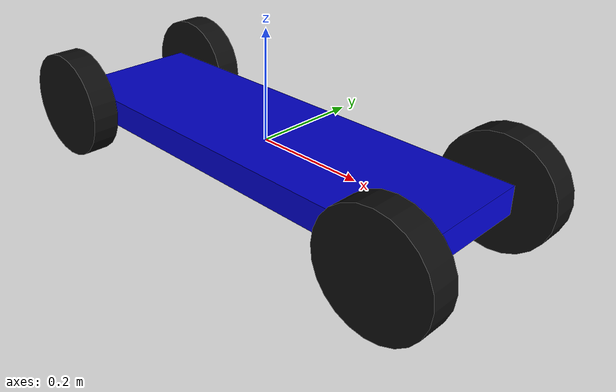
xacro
<?xml version="1.0"?>
<robot xmlns:xacro="http://www.ros.org/wiki/xacro" name="rover">

 <xacro:include filename="$(find mybot_gazebo)/urdf/mybotBLU.gazebo" />

  <xacro:property name="wheel_radius" value="0.10" />
  <xacro:property name="wheel_width" value="0.05" />
  <xacro:property name="body_height" value="0.05" />
  <xacro:property name="body_width" value="0.25" />
  <xacro:property name="body_length" value="0.8" />

  <gazebo reference="body">
 <material>Gazebo/Blue</material>
    <mu1>0.2</mu1>
    <mu2>0.2</mu2>
  </gazebo>

<!-- descrizione body-->

  <link name="body">
    <visual>
      <geometry>
        <box size="${body_length} ${body_width} ${body_height}"/>
      </geometry>
    <material name="blue">
    <color rgba="0.0 0.0 0.8 1.0"/>
    </material>
    </visual>

    <collision>
      <geometry>
        <box size="${body_length} ${body_width} ${body_height}"/>
      </geometry>
    </collision>

    <inertial>
      <mass value="5"/>
      <inertia ixx="${(5/12) * (body_width * body_width + body_height* body_height)}" ixy="0" ixz="0" iyy="${(5/12) * (body_length * body_length + body_height * body_height)}" iyz="0" izz="${(5/12) * (body_width * body_width + body_length * body_length)}" />
    </inertial>
  </link>

<!-- descrizione 4 ruote -->

  <xacro:macro name="wheel_link" params="name radius width mass">
    <gazebo reference="${name}">
 <material>Gazebo/Black</material>
      <mu1>0.84</mu1>
      <mu2>0.84</mu2>
    </gazebo>

    <link name="${name}">
      <visual>
        <geometry>
          <cylinder length="${width}" radius="${radius}"/>
        </geometry>
      <material name="black">
        <color rgba="0.05 0.05 0.05 1"/>
      </material>
      </visual>

      <collision>
        <geometry>
          <cylinder length="${width}" radius="${radius}"/>
        </geometry>
      </collision>

      <inertial>
        <mass value="${mass}"/>
        <inertia ixx="${(1/12) * mass * (3 * radius * radius + width * width)}" ixy="0" ixz="0" iyy="${(1/12) * mass * (3 * radius * radius + width * width)}" iyz="0" izz="${(1/2) * mass * radius * radius}"/>
      </inertial>
    </link>
  </xacro:macro>

  <xacro:wheel_link name="wFL" radius="${wheel_radius}" width="${wheel_width}" mass="0.3"/>

  <joint name="jFL" type="continuous">
    <parent link="body"/>
    <child link="wFL"/>
    <axis xyz="0 0 1"/>
    <origin xyz="${body_length/2 - 0.03} ${body_width/2 + wheel_width/2} 0" rpy="${pi/2} 0 0" />
    <dynamics friction="0.1"/>
  </joint>

  <xacro:wheel_link name="wBL" radius="${wheel_radius}" width="${wheel_width}" mass="0.3"/>

  <joint name="jBL" type="continuous">
    <parent link="body"/>
    <child link="wBL"/>
    <axis xyz="0 0 1"/>
    <origin xyz="-${body_length/2 - 0.03} ${body_width/2 + wheel_width/2} 0" rpy="${pi/2} 0 0" />
    <dynamics friction="0.1"/>
  </joint>

  <xacro:wheel_link name="wFR" radius="${wheel_radius}" width="${wheel_width}" mass="0.3"/>

  <joint name="jFR" type="continuous">
    <parent link="body"/>
    <child link="wFR"/>
    <axis xyz="0 0 1"/>
    <origin xyz="${body_length/2 - 0.03} -${body_width/2 + wheel_width/2} 0" rpy="${pi/2} 0 0" />
    <dynamics friction="0.1"/>
  </joint>

  <xacro:wheel_link name="wBR" radius="${wheel_radius}" width="${wheel_width}" mass="0.3"/>

  <joint name="jBR" type="continuous">
    <parent link="body"/>
    <child link="wBR"/>
    <axis xyz="0 0 1"/>
    <origin xyz="-${body_length/2 - 0.03} -${body_width/2 + wheel_width/2} 0" rpy="${pi/2} 0 0" />
    <dynamics friction="0.1"/>
  </joint>

</robot>
